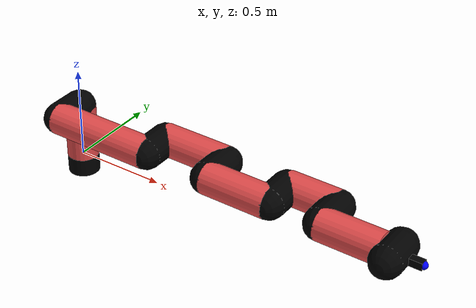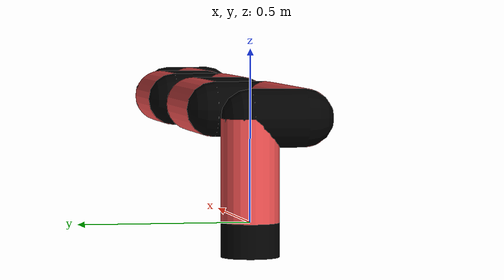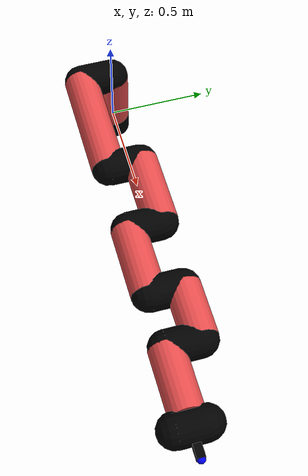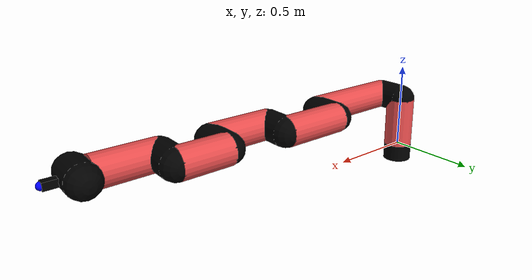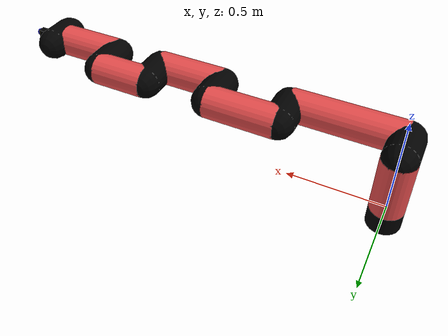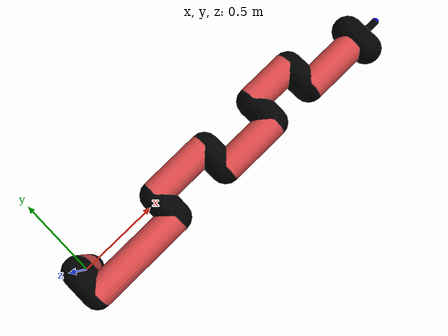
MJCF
<mujoco model="manipulator">
		<compiler angle="degree" coordinate="local" inertiafromgeom="auto" meshdir="meshes/"/>
		<option gravity="0 0 0" integrator="RK4" iterations="30" timestep="0.01"/>

		<default>
		<joint armature="1" limited="true" stiffness="10" damping="15" frictionloss="5.0"/>
		<geom conaffinity="1" condim="3" contype="1" friction=".5 .1 .1" margin="0.002"/>
		<motor ctrllimited="true"/>
		<position ctrllimited="true"/>
		</default>

		<asset>
		<texture builtin="gradient" height="100" rgb1="1.0 1.0 1.0" rgb2="1.0 1.0 1.0" type="skybox" width="100"/>
		<texture builtin="flat" height="32" name="arm_tex" rgb1="0.9 0.3 0.3" type="2d" width="32"/>
		<texture builtin="flat" height="32" name="gripper_tex" rgb1="0.0 0.0 0.0" type="cube" width="32"/>

		<material name="arm_mat" shininess="0.1" specular="0.1" texture="arm_tex"/>
		<material name="gripper_mat" shininess="1" specular="1" texture="gripper_tex"/>
		</asset>

		<worldbody>
		<light cutoff="45" diffuse=".8 .8 .8" dir="0 0.16 -1" directional="false" name="light" pos="0 -2.0 8.0" specular="0.3 0.3 0.3"/>

		<body name="base_link" pos="0 0 -0.1">
		<geom fromto="0 0 0 0 0 0.1" material="arm_mat" name="base_link" rgba="0.0 0.0 0.0 1" size="0.085" type="cylinder"/>
		</body>

		<body name="l1" pos="0 0 0">
<geom fromto="0 0 0 0 0 0.3" material="arm_mat" name="l1" rgba="0.9 0.3 0.3 1" size="0.085" type="cylinder"/>
<geom fromto="0 0 0.3 0 -0.16 0.3" material="arm_mat" name="l1_ex" rgba="0.0 0.0 0.0 1" size="0.085" type="capsule"/>
<joint axis="0 0 1" name="j1" pos="0 0 0" range="-90 90" damping="28.89" frictionloss="12.12"/>

<body name="l2" pos="0 -0.16 0.3">
<geom fromto="0 0 0 0.57 0 0" material="arm_mat" name="l2" rgba="0.9 0.3 0.3 1" size="0.085" type="cylinder"/>
<geom fromto="0.57 0 0 0.57 0.16 0" material="arm_mat" name="l2_ex" rgba="0.0 0.0 0.0 1" size="0.085" type="capsule"/>
<joint axis="0.0 1.0 0.0" name="j2" pos="0 0 0" range="-90 60" damping="28.59" frictionloss="9.14"/>

<body name="l3" pos="0.57 0.16 0">
<geom fromto="0 0 0 0.37 0 0" material="arm_mat" name="l3" rgba="0.9 0.3 0.3 1" size="0.085" type="cylinder"/>
<geom fromto="0.37 0 0 0.37 -0.16 0" material="arm_mat" name="l3_ex" rgba="0.0 0.0 0.0 1" size="0.085" type="capsule"/>
<joint axis="0.0 1.0 0.0" name="j3" pos="0 0 0" range="-30 60" damping="23.66" frictionloss="8.18"/>

<body name="l4" pos="0.37 -0.16 0">
<geom fromto="0 0 0 0.36 0 0" material="arm_mat" name="l4" rgba="0.9 0.3 0.3 1" size="0.085" type="cylinder"/>
<geom fromto="0.36 0 0 0.36 0.16 0" material="arm_mat" name="l4_ex" rgba="0.0 0.0 0.0 1" size="0.085" type="capsule"/>
<joint axis="0.0 1.0 0.0" name="j4" pos="0 0 0" range="-30 60" damping="37.18" frictionloss="10.54"/>

<body name="l5" pos="0.36 0.16 0">
<geom fromto="0 0 0 0.28 0 0" material="arm_mat" name="l5" rgba="0.9 0.3 0.3 1" size="0.085" type="cylinder"/>
<geom fromto="0.28 0 0 0.28 -0.16 0" material="arm_mat" name="l5_ex" rgba="0.0 0.0 0.0 1" size="0.085" type="capsule"/>
<joint axis="0.0 1.0 0.0" name="j5" pos="0 0 0" range="-30 60" damping="30.23" frictionloss="11.34"/>

<body name="l6" pos="0.28 -0.16 0">
<geom fromto="0 0 0 0.33 0 0" material="arm_mat" name="l6" rgba="0.9 0.3 0.3 1" size="0.085" type="cylinder"/>
<joint axis="0.0 1.0 0.0" name="j6" pos="0 0 0" range="-30 60" damping="28.87" frictionloss="7.73"/>

<body name="gripper" pos="0.33 0 0">
<geom fromto="0.05 -0.07 0 0.05 0.07 0" material="gripper_mat" name="gripper" rgba="0.0 0.0 0.0 1" size="0.085" type="capsule"/><joint axis="1 0 0" name="j7" pos="0 0 0" range="-90 90" damping="15" frictionloss="5.0"/><body name="finger" pos="0.1 0 0">
<geom fromto="0 0.0 0 0.1 0.0 0" material="gripper_mat" name="finger" rgba="0.0 0.0 0.0 1" size="0.020 0.06 0.06" type="box"/>
</body>
<site name="current" pos="0.2 0. 0.0" rgba="0. 0. 1.0 1" size="0.02" type="sphere"/>
</body>
</body>
</body>
</body>
</body>
</body>
</body>
</worldbody>
<actuator>
<motor ctrllimited="true" ctrlrange="-1.0 1.0" joint="j1" gear="93.15"/>
<motor ctrllimited="true" ctrlrange="-1.0 1.0" joint="j2" gear="71.28"/>
<motor ctrllimited="true" ctrlrange="-1.0 1.0" joint="j3" gear="85.3"/>
<motor ctrllimited="true" ctrlrange="-1.0 1.0" joint="j4" gear="94.41"/>
<motor ctrllimited="true" ctrlrange="-1.0 1.0" joint="j5" gear="66.99"/>
<motor ctrllimited="true" ctrlrange="-1.0 1.0" joint="j6" gear="74.24"/>
<motor ctrllimited="true" ctrlrange="-1.0 1.0" joint="j7" gear="80"/>
</actuator>
</mujoco>
